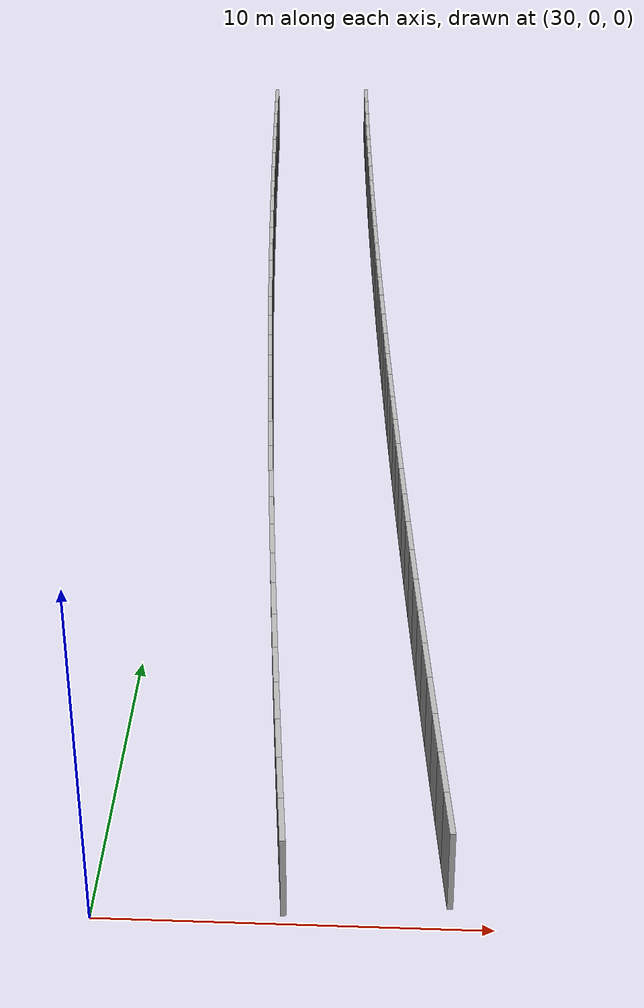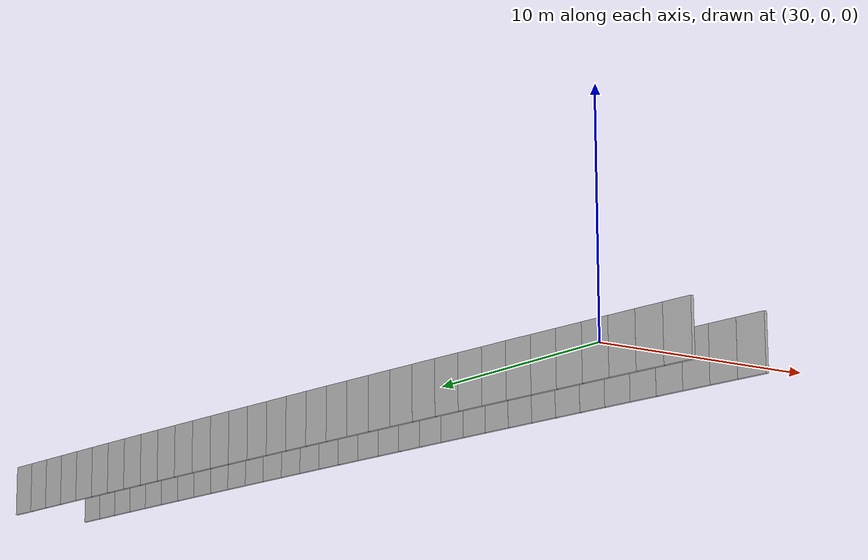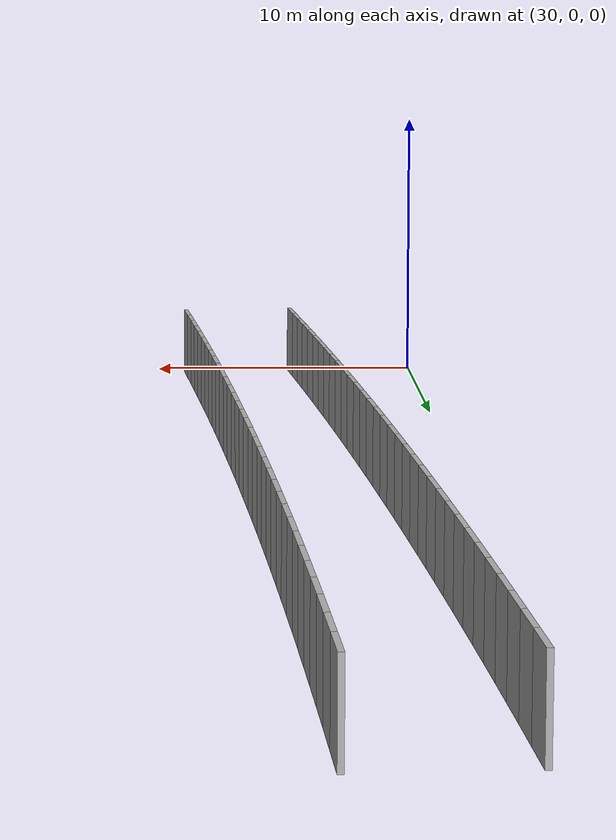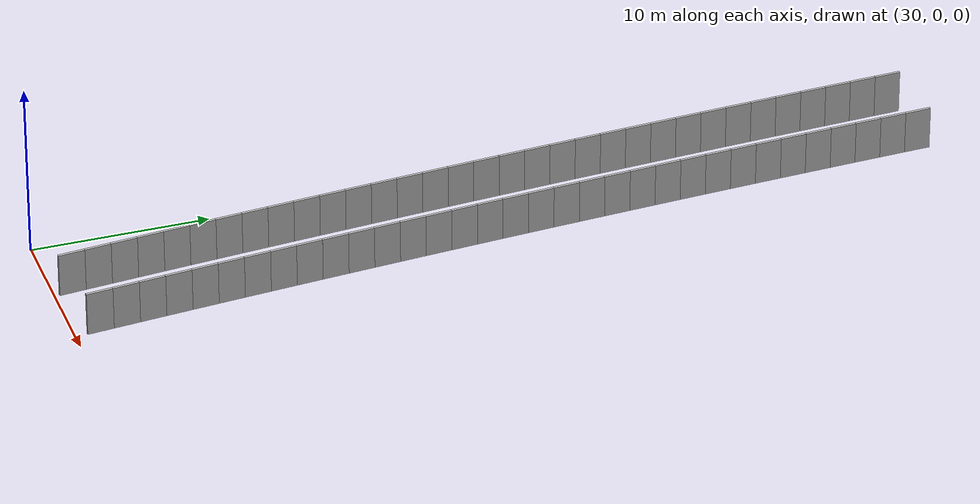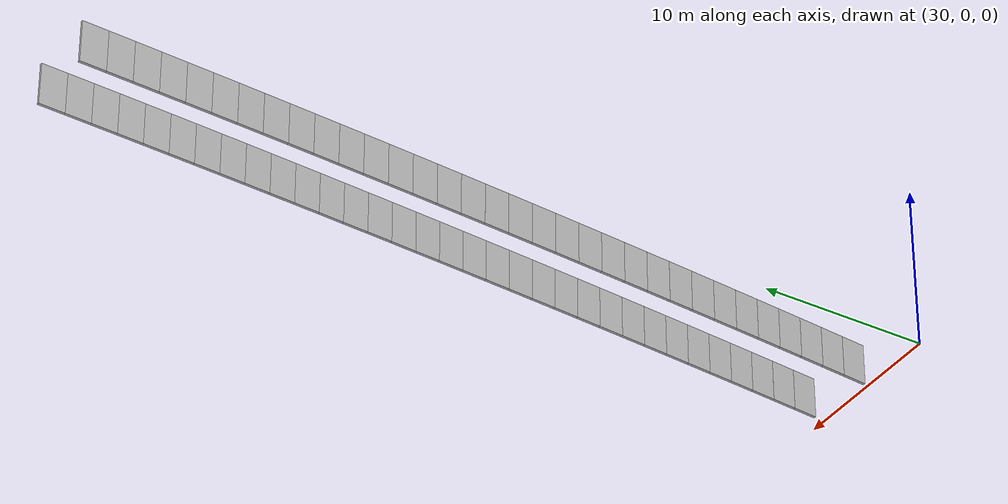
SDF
<?xml version="1.0" ?>
<sdf version="1.6">
  <model name="sps_0224">
    <pose frame="">0 0 0 0 -0 0</pose>
    <static>1</static>
    <self_collide>0</self_collide>
    <allow_auto_disable>0</allow_auto_disable>
    <link name="Wall5237">
      <kinematic>0</kinematic>
      <gravity>1</gravity>
      <self_collide>0</self_collide>
      <collision name="collision">
        <geometry>
          <box>
            <size>1.49659 0.15 2.5</size>
          </box>
        </geometry>
        <pose frame="">0 0 0 0 -0 0</pose>
      </collision>
      <visual name="visual">
        <geometry>
          <box>
            <size>1.49659 0.15 2.5</size>
          </box>
        </geometry>
        <pose frame="">0 0 0 0 -0 0</pose>
        <cast_shadows>1</cast_shadows>
        <transparency>0.0</transparency>
      </visual>
      <pose frame="">35.415 49.185 1.25 0 0 -1.52465</pose>
    </link>
    <link name="Wall5238">
      <kinematic>0</kinematic>
      <gravity>1</gravity>
      <self_collide>0</self_collide>
      <collision name="collision">
        <geometry>
          <box>
            <size>1.49651 0.15 2.5</size>
          </box>
        </geometry>
        <pose frame="">0 0 0 0 -0 0</pose>
      </collision>
      <visual name="visual">
        <geometry>
          <box>
            <size>1.49651 0.15 2.5</size>
          </box>
        </geometry>
        <pose frame="">0 0 0 0 -0 0</pose>
        <cast_shadows>1</cast_shadows>
        <transparency>0.0</transparency>
      </visual>
      <pose frame="">35.4852 47.6901 1.25 0 0 -1.5231</pose>
    </link>
    <link name="Wall5239">
      <kinematic>0</kinematic>
      <gravity>1</gravity>
      <self_collide>0</self_collide>
      <collision name="collision">
        <geometry>
          <box>
            <size>1.49644 0.15 2.5</size>
          </box>
        </geometry>
        <pose frame="">0 0 0 0 -0 0</pose>
      </collision>
      <visual name="visual">
        <geometry>
          <box>
            <size>1.49644 0.15 2.5</size>
          </box>
        </geometry>
        <pose frame="">0 0 0 0 -0 0</pose>
        <cast_shadows>1</cast_shadows>
        <transparency>0.0</transparency>
      </visual>
      <pose frame="">35.5576 46.1954 1.25 0 0 -1.52159</pose>
    </link>
    <link name="Wall5240">
      <kinematic>0</kinematic>
      <gravity>1</gravity>
      <self_collide>0</self_collide>
      <collision name="collision">
        <geometry>
          <box>
            <size>1.49669 0.15 2.5</size>
          </box>
        </geometry>
        <pose frame="">0 0 0 0 -0 0</pose>
      </collision>
      <visual name="visual">
        <geometry>
          <box>
            <size>1.49669 0.15 2.5</size>
          </box>
        </geometry>
        <pose frame="">0 0 0 0 -0 0</pose>
        <cast_shadows>1</cast_shadows>
        <transparency>0.0</transparency>
      </visual>
      <pose frame="">35.6326 44.7007 1.25 0 0 -1.51984</pose>
    </link>
    <link name="Wall5241">
      <kinematic>0</kinematic>
      <gravity>1</gravity>
      <self_collide>0</self_collide>
      <collision name="collision">
        <geometry>
          <box>
            <size>1.4965 0.15 2.5</size>
          </box>
        </geometry>
        <pose frame="">0 0 0 0 -0 0</pose>
      </collision>
      <visual name="visual">
        <geometry>
          <box>
            <size>1.4965 0.15 2.5</size>
          </box>
        </geometry>
        <pose frame="">0 0 0 0 -0 0</pose>
        <cast_shadows>1</cast_shadows>
        <transparency>0.0</transparency>
      </visual>
      <pose frame="">35.7099 43.2061 1.25 0 0 -1.5184</pose>
    </link>
    <link name="Wall5242">
      <kinematic>0</kinematic>
      <gravity>1</gravity>
      <self_collide>0</self_collide>
      <collision name="collision">
        <geometry>
          <box>
            <size>1.49657 0.15 2.5</size>
          </box>
        </geometry>
        <pose frame="">0 0 0 0 -0 0</pose>
      </collision>
      <visual name="visual">
        <geometry>
          <box>
            <size>1.49657 0.15 2.5</size>
          </box>
        </geometry>
        <pose frame="">0 0 0 0 -0 0</pose>
        <cast_shadows>1</cast_shadows>
        <transparency>0.0</transparency>
      </visual>
      <pose frame="">35.7895 41.7117 1.25 0 0 -1.51677</pose>
    </link>
    <link name="Wall5243">
      <kinematic>0</kinematic>
      <gravity>1</gravity>
      <self_collide>0</self_collide>
      <collision name="collision">
        <geometry>
          <box>
            <size>1.49633 0.15 2.5</size>
          </box>
        </geometry>
        <pose frame="">0 0 0 0 -0 0</pose>
      </collision>
      <visual name="visual">
        <geometry>
          <box>
            <size>1.49633 0.15 2.5</size>
          </box>
        </geometry>
        <pose frame="">0 0 0 0 -0 0</pose>
        <cast_shadows>1</cast_shadows>
        <transparency>0.0</transparency>
      </visual>
      <pose frame="">35.8715 40.2175 1.25 0 0 -1.51517</pose>
    </link>
    <link name="Wall5244">
      <kinematic>0</kinematic>
      <gravity>1</gravity>
      <self_collide>0</self_collide>
      <collision name="collision">
        <geometry>
          <box>
            <size>1.49664 0.15 2.5</size>
          </box>
        </geometry>
        <pose frame="">0 0 0 0 -0 0</pose>
      </collision>
      <visual name="visual">
        <geometry>
          <box>
            <size>1.49664 0.15 2.5</size>
          </box>
        </geometry>
        <pose frame="">0 0 0 0 -0 0</pose>
        <cast_shadows>1</cast_shadows>
        <transparency>0.0</transparency>
      </visual>
      <pose frame="">35.9557 38.7234 1.25 0 0 -1.51371</pose>
    </link>
    <link name="Wall5245">
      <kinematic>0</kinematic>
      <gravity>1</gravity>
      <self_collide>0</self_collide>
      <collision name="collision">
        <geometry>
          <box>
            <size>1.49655 0.15 2.5</size>
          </box>
        </geometry>
        <pose frame="">0 0 0 0 -0 0</pose>
      </collision>
      <visual name="visual">
        <geometry>
          <box>
            <size>1.49655 0.15 2.5</size>
          </box>
        </geometry>
        <pose frame="">0 0 0 0 -0 0</pose>
        <cast_shadows>1</cast_shadows>
        <transparency>0.0</transparency>
      </visual>
      <pose frame="">36.0424 37.2293 1.25 0 0 -1.51195</pose>
    </link>
    <link name="Wall5246">
      <kinematic>0</kinematic>
      <gravity>1</gravity>
      <self_collide>0</self_collide>
      <collision name="collision">
        <geometry>
          <box>
            <size>1.49656 0.15 2.5</size>
          </box>
        </geometry>
        <pose frame="">0 0 0 0 -0 0</pose>
      </collision>
      <visual name="visual">
        <geometry>
          <box>
            <size>1.49656 0.15 2.5</size>
          </box>
        </geometry>
        <pose frame="">0 0 0 0 -0 0</pose>
        <cast_shadows>1</cast_shadows>
        <transparency>0.0</transparency>
      </visual>
      <pose frame="">36.1316 35.7354 1.25 0 0 -1.51048</pose>
    </link>
    <link name="Wall5247">
      <kinematic>0</kinematic>
      <gravity>1</gravity>
      <self_collide>0</self_collide>
      <collision name="collision">
        <geometry>
          <box>
            <size>1.49647 0.15 2.5</size>
          </box>
        </geometry>
        <pose frame="">0 0 0 0 -0 0</pose>
      </collision>
      <visual name="visual">
        <geometry>
          <box>
            <size>1.49647 0.15 2.5</size>
          </box>
        </geometry>
        <pose frame="">0 0 0 0 -0 0</pose>
        <cast_shadows>1</cast_shadows>
        <transparency>0.0</transparency>
      </visual>
      <pose frame="">36.223 34.2417 1.25 0 0 -1.50876</pose>
    </link>
    <link name="Wall5248">
      <kinematic>0</kinematic>
      <gravity>1</gravity>
      <self_collide>0</self_collide>
      <collision name="collision">
        <geometry>
          <box>
            <size>1.49643 0.15 2.5</size>
          </box>
        </geometry>
        <pose frame="">0 0 0 0 -0 0</pose>
      </collision>
      <visual name="visual">
        <geometry>
          <box>
            <size>1.49643 0.15 2.5</size>
          </box>
        </geometry>
        <pose frame="">0 0 0 0 -0 0</pose>
        <cast_shadows>1</cast_shadows>
        <transparency>0.0</transparency>
      </visual>
      <pose frame="">36.3169 32.7482 1.25 0 0 -1.50725</pose>
    </link>
    <link name="Wall5249">
      <kinematic>0</kinematic>
      <gravity>1</gravity>
      <self_collide>0</self_collide>
      <collision name="collision">
        <geometry>
          <box>
            <size>1.49658 0.15 2.5</size>
          </box>
        </geometry>
        <pose frame="">0 0 0 0 -0 0</pose>
      </collision>
      <visual name="visual">
        <geometry>
          <box>
            <size>1.49658 0.15 2.5</size>
          </box>
        </geometry>
        <pose frame="">0 0 0 0 -0 0</pose>
        <cast_shadows>1</cast_shadows>
        <transparency>0.0</transparency>
      </visual>
      <pose frame="">36.4132 31.2548 1.25 0 0 -1.50566</pose>
    </link>
    <link name="Wall5250">
      <kinematic>0</kinematic>
      <gravity>1</gravity>
      <self_collide>0</self_collide>
      <collision name="collision">
        <geometry>
          <box>
            <size>1.4965 0.15 2.5</size>
          </box>
        </geometry>
        <pose frame="">0 0 0 0 -0 0</pose>
      </collision>
      <visual name="visual">
        <geometry>
          <box>
            <size>1.4965 0.15 2.5</size>
          </box>
        </geometry>
        <pose frame="">0 0 0 0 -0 0</pose>
        <cast_shadows>1</cast_shadows>
        <transparency>0.0</transparency>
      </visual>
      <pose frame="">36.5118 29.7615 1.25 0 0 -1.50406</pose>
    </link>
    <link name="Wall5251">
      <kinematic>0</kinematic>
      <gravity>1</gravity>
      <self_collide>0</self_collide>
      <collision name="collision">
        <geometry>
          <box>
            <size>1.49652 0.15 2.5</size>
          </box>
        </geometry>
        <pose frame="">0 0 0 0 -0 0</pose>
      </collision>
      <visual name="visual">
        <geometry>
          <box>
            <size>1.49652 0.15 2.5</size>
          </box>
        </geometry>
        <pose frame="">0 0 0 0 -0 0</pose>
        <cast_shadows>1</cast_shadows>
        <transparency>0.0</transparency>
      </visual>
      <pose frame="">36.6127 28.2684 1.25 0 0 -1.50259</pose>
    </link>
    <link name="Wall5252">
      <kinematic>0</kinematic>
      <gravity>1</gravity>
      <self_collide>0</self_collide>
      <collision name="collision">
        <geometry>
          <box>
            <size>1.49664 0.15 2.5</size>
          </box>
        </geometry>
        <pose frame="">0 0 0 0 -0 0</pose>
      </collision>
      <visual name="visual">
        <geometry>
          <box>
            <size>1.49664 0.15 2.5</size>
          </box>
        </geometry>
        <pose frame="">0 0 0 0 -0 0</pose>
        <cast_shadows>1</cast_shadows>
        <transparency>0.0</transparency>
      </visual>
      <pose frame="">36.716 26.7754 1.25 0 0 -1.50084</pose>
    </link>
    <link name="Wall5253">
      <kinematic>0</kinematic>
      <gravity>1</gravity>
      <self_collide>0</self_collide>
      <collision name="collision">
        <geometry>
          <box>
            <size>1.49643 0.15 2.5</size>
          </box>
        </geometry>
        <pose frame="">0 0 0 0 -0 0</pose>
      </collision>
      <visual name="visual">
        <geometry>
          <box>
            <size>1.49643 0.15 2.5</size>
          </box>
        </geometry>
        <pose frame="">0 0 0 0 -0 0</pose>
        <cast_shadows>1</cast_shadows>
        <transparency>0.0</transparency>
      </visual>
      <pose frame="">36.8217 25.2826 1.25 0 0 -1.49936</pose>
    </link>
    <link name="Wall5254">
      <kinematic>0</kinematic>
      <gravity>1</gravity>
      <self_collide>0</self_collide>
      <collision name="collision">
        <geometry>
          <box>
            <size>1.49654 0.15 2.5</size>
          </box>
        </geometry>
        <pose frame="">0 0 0 0 -0 0</pose>
      </collision>
      <visual name="visual">
        <geometry>
          <box>
            <size>1.49654 0.15 2.5</size>
          </box>
        </geometry>
        <pose frame="">0 0 0 0 -0 0</pose>
        <cast_shadows>1</cast_shadows>
        <transparency>0.0</transparency>
      </visual>
      <pose frame="">36.9297 23.79 1.25 0 0 -1.49777</pose>
    </link>
    <link name="Wall5255">
      <kinematic>0</kinematic>
      <gravity>1</gravity>
      <self_collide>0</self_collide>
      <collision name="collision">
        <geometry>
          <box>
            <size>1.49661 0.15 2.5</size>
          </box>
        </geometry>
        <pose frame="">0 0 0 0 -0 0</pose>
      </collision>
      <visual name="visual">
        <geometry>
          <box>
            <size>1.49661 0.15 2.5</size>
          </box>
        </geometry>
        <pose frame="">0 0 0 0 -0 0</pose>
        <cast_shadows>1</cast_shadows>
        <transparency>0.0</transparency>
      </visual>
      <pose frame="">37.0402 22.2975 1.25 0 0 -1.49605</pose>
    </link>
    <link name="Wall5256">
      <kinematic>0</kinematic>
      <gravity>1</gravity>
      <self_collide>0</self_collide>
      <collision name="collision">
        <geometry>
          <box>
            <size>1.49652 0.15 2.5</size>
          </box>
        </geometry>
        <pose frame="">0 0 0 0 -0 0</pose>
      </collision>
      <visual name="visual">
        <geometry>
          <box>
            <size>1.49652 0.15 2.5</size>
          </box>
        </geometry>
        <pose frame="">0 0 0 0 -0 0</pose>
        <cast_shadows>1</cast_shadows>
        <transparency>0.0</transparency>
      </visual>
      <pose frame="">37.1529 20.8052 1.25 0 0 -1.49466</pose>
    </link>
    <link name="Wall5257">
      <kinematic>0</kinematic>
      <gravity>1</gravity>
      <self_collide>0</self_collide>
      <collision name="collision">
        <geometry>
          <box>
            <size>1.49672 0.15 2.5</size>
          </box>
        </geometry>
        <pose frame="">0 0 0 0 -0 0</pose>
      </collision>
      <visual name="visual">
        <geometry>
          <box>
            <size>1.49672 0.15 2.5</size>
          </box>
        </geometry>
        <pose frame="">0 0 0 0 -0 0</pose>
        <cast_shadows>1</cast_shadows>
        <transparency>0.0</transparency>
      </visual>
      <pose frame="">37.2681 19.313 1.25 0 0 -1.49295</pose>
    </link>
    <link name="Wall5258">
      <kinematic>0</kinematic>
      <gravity>1</gravity>
      <self_collide>0</self_collide>
      <collision name="collision">
        <geometry>
          <box>
            <size>1.49653 0.15 2.5</size>
          </box>
        </geometry>
        <pose frame="">0 0 0 0 -0 0</pose>
      </collision>
      <visual name="visual">
        <geometry>
          <box>
            <size>1.49653 0.15 2.5</size>
          </box>
        </geometry>
        <pose frame="">0 0 0 0 -0 0</pose>
        <cast_shadows>1</cast_shadows>
        <transparency>0.0</transparency>
      </visual>
      <pose frame="">37.3856 17.821 1.25 0 0 -1.49147</pose>
    </link>
    <link name="Wall5259">
      <kinematic>0</kinematic>
      <gravity>1</gravity>
      <self_collide>0</self_collide>
      <collision name="collision">
        <geometry>
          <box>
            <size>1.49648 0.15 2.5</size>
          </box>
        </geometry>
        <pose frame="">0 0 0 0 -0 0</pose>
      </collision>
      <visual name="visual">
        <geometry>
          <box>
            <size>1.49648 0.15 2.5</size>
          </box>
        </geometry>
        <pose frame="">0 0 0 0 -0 0</pose>
        <cast_shadows>1</cast_shadows>
        <transparency>0.0</transparency>
      </visual>
      <pose frame="">37.5054 16.3293 1.25 0 0 -1.48983</pose>
    </link>
    <link name="Wall5260">
      <kinematic>0</kinematic>
      <gravity>1</gravity>
      <self_collide>0</self_collide>
      <collision name="collision">
        <geometry>
          <box>
            <size>1.49649 0.15 2.5</size>
          </box>
        </geometry>
        <pose frame="">0 0 0 0 -0 0</pose>
      </collision>
      <visual name="visual">
        <geometry>
          <box>
            <size>1.49649 0.15 2.5</size>
          </box>
        </geometry>
        <pose frame="">0 0 0 0 -0 0</pose>
        <cast_shadows>1</cast_shadows>
        <transparency>0.0</transparency>
      </visual>
      <pose frame="">37.6276 14.8378 1.25 0 0 -1.48827</pose>
    </link>
    <link name="Wall5261">
      <kinematic>0</kinematic>
      <gravity>1</gravity>
      <self_collide>0</self_collide>
      <collision name="collision">
        <geometry>
          <box>
            <size>1.49649 0.15 2.5</size>
          </box>
        </geometry>
        <pose frame="">0 0 0 0 -0 0</pose>
      </collision>
      <visual name="visual">
        <geometry>
          <box>
            <size>1.49649 0.15 2.5</size>
          </box>
        </geometry>
        <pose frame="">0 0 0 0 -0 0</pose>
        <cast_shadows>1</cast_shadows>
        <transparency>0.0</transparency>
      </visual>
      <pose frame="">37.752 13.3465 1.25 0 0 -1.48676</pose>
    </link>
    <link name="Wall5262">
      <kinematic>0</kinematic>
      <gravity>1</gravity>
      <self_collide>0</self_collide>
      <collision name="collision">
        <geometry>
          <box>
            <size>1.49653 0.15 2.5</size>
          </box>
        </geometry>
        <pose frame="">0 0 0 0 -0 0</pose>
      </collision>
      <visual name="visual">
        <geometry>
          <box>
            <size>1.49653 0.15 2.5</size>
          </box>
        </geometry>
        <pose frame="">0 0 0 0 -0 0</pose>
        <cast_shadows>1</cast_shadows>
        <transparency>0.0</transparency>
      </visual>
      <pose frame="">37.879 11.8554 1.25 0 0 -1.485</pose>
    </link>
    <link name="Wall5263">
      <kinematic>0</kinematic>
      <gravity>1</gravity>
      <self_collide>0</self_collide>
      <collision name="collision">
        <geometry>
          <box>
            <size>1.49629 0.15 2.5</size>
          </box>
        </geometry>
        <pose frame="">0 0 0 0 -0 0</pose>
      </collision>
      <visual name="visual">
        <geometry>
          <box>
            <size>1.49629 0.15 2.5</size>
          </box>
        </geometry>
        <pose frame="">0 0 0 0 -0 0</pose>
        <cast_shadows>1</cast_shadows>
        <transparency>0.0</transparency>
      </visual>
      <pose frame="">38.0083 10.3646 1.25 0 0 -1.48356</pose>
    </link>
    <link name="Wall5264">
      <kinematic>0</kinematic>
      <gravity>1</gravity>
      <self_collide>0</self_collide>
      <collision name="collision">
        <geometry>
          <box>
            <size>1.49652 0.15 2.5</size>
          </box>
        </geometry>
        <pose frame="">0 0 0 0 -0 0</pose>
      </collision>
      <visual name="visual">
        <geometry>
          <box>
            <size>1.49652 0.15 2.5</size>
          </box>
        </geometry>
        <pose frame="">0 0 0 0 -0 0</pose>
        <cast_shadows>1</cast_shadows>
        <transparency>0.0</transparency>
      </visual>
      <pose frame="">38.1399 8.87398 1.25 0 0 -1.48181</pose>
    </link>
    <link name="Wall5265">
      <kinematic>0</kinematic>
      <gravity>1</gravity>
      <self_collide>0</self_collide>
      <collision name="collision">
        <geometry>
          <box>
            <size>1.49672 0.15 2.5</size>
          </box>
        </geometry>
        <pose frame="">0 0 0 0 -0 0</pose>
      </collision>
      <visual name="visual">
        <geometry>
          <box>
            <size>1.49672 0.15 2.5</size>
          </box>
        </geometry>
        <pose frame="">0 0 0 0 -0 0</pose>
        <cast_shadows>1</cast_shadows>
        <transparency>0.0</transparency>
      </visual>
      <pose frame="">38.274 7.38338 1.25 0 0 -1.48035</pose>
    </link>
    <link name="Wall5266">
      <kinematic>0</kinematic>
      <gravity>1</gravity>
      <self_collide>0</self_collide>
      <collision name="collision">
        <geometry>
          <box>
            <size>1.49652 0.15 2.5</size>
          </box>
        </geometry>
        <pose frame="">0 0 0 0 -0 0</pose>
      </collision>
      <visual name="visual">
        <geometry>
          <box>
            <size>1.49652 0.15 2.5</size>
          </box>
        </geometry>
        <pose frame="">0 0 0 0 -0 0</pose>
        <cast_shadows>1</cast_shadows>
        <transparency>0.0</transparency>
      </visual>
      <pose frame="">38.4105 5.89299 1.25 0 0 -1.4787</pose>
    </link>
    <link name="Wall5267">
      <kinematic>0</kinematic>
      <gravity>1</gravity>
      <self_collide>0</self_collide>
      <collision name="collision">
        <geometry>
          <box>
            <size>1.49653 0.15 2.5</size>
          </box>
        </geometry>
        <pose frame="">0 0 0 0 -0 0</pose>
      </collision>
      <visual name="visual">
        <geometry>
          <box>
            <size>1.49653 0.15 2.5</size>
          </box>
        </geometry>
        <pose frame="">0 0 0 0 -0 0</pose>
        <cast_shadows>1</cast_shadows>
        <transparency>0.0</transparency>
      </visual>
      <pose frame="">38.5492 4.40291 1.25 0 0 -1.47726</pose>
    </link>
    <link name="Wall5268">
      <kinematic>0</kinematic>
      <gravity>1</gravity>
      <self_collide>0</self_collide>
      <collision name="collision">
        <geometry>
          <box>
            <size>1.4966 0.15 2.5</size>
          </box>
        </geometry>
        <pose frame="">0 0 0 0 -0 0</pose>
      </collision>
      <visual name="visual">
        <geometry>
          <box>
            <size>1.4966 0.15 2.5</size>
          </box>
        </geometry>
        <pose frame="">0 0 0 0 -0 0</pose>
        <cast_shadows>1</cast_shadows>
        <transparency>0.0</transparency>
      </visual>
      <pose frame="">38.6902 2.91301 1.25 0 0 -1.47551</pose>
    </link>
    <link name="Wall5269">
      <kinematic>0</kinematic>
      <gravity>1</gravity>
      <self_collide>0</self_collide>
      <collision name="collision">
        <geometry>
          <box>
            <size>1.49644 0.15 2.5</size>
          </box>
        </geometry>
        <pose frame="">0 0 0 0 -0 0</pose>
      </collision>
      <visual name="visual">
        <geometry>
          <box>
            <size>1.49644 0.15 2.5</size>
          </box>
        </geometry>
        <pose frame="">0 0 0 0 -0 0</pose>
        <cast_shadows>1</cast_shadows>
        <transparency>0.0</transparency>
      </visual>
      <pose frame="">38.8337 1.42338 1.25 0 0 -1.47402</pose>
    </link>
    <link name="Wall7033">
      <kinematic>0</kinematic>
      <gravity>1</gravity>
      <self_collide>0</self_collide>
      <collision name="collision">
        <geometry>
          <box>
            <size>1.50319 0.15 2.5</size>
          </box>
        </geometry>
        <pose frame="">0 0 0 0 -0 0</pose>
      </collision>
      <visual name="visual">
        <geometry>
          <box>
            <size>1.50319 0.15 2.5</size>
          </box>
        </geometry>
        <pose frame="">0 0 0 0 -0 0</pose>
        <cast_shadows>1</cast_shadows>
        <transparency>0.0</transparency>
      </visual>
      <pose frame="">31.28 48.9939 1.25 0 0 -1.52461</pose>
    </link>
    <link name="Wall7034">
      <kinematic>0</kinematic>
      <gravity>1</gravity>
      <self_collide>0</self_collide>
      <collision name="collision">
        <geometry>
          <box>
            <size>1.50311 0.15 2.5</size>
          </box>
        </geometry>
        <pose frame="">0 0 0 0 -0 0</pose>
      </collision>
      <visual name="visual">
        <geometry>
          <box>
            <size>1.50311 0.15 2.5</size>
          </box>
        </geometry>
        <pose frame="">0 0 0 0 -0 0</pose>
        <cast_shadows>1</cast_shadows>
        <transparency>0.0</transparency>
      </visual>
      <pose frame="">31.3505 47.4924 1.25 0 0 -1.52315</pose>
    </link>
    <link name="Wall7035">
      <kinematic>0</kinematic>
      <gravity>1</gravity>
      <self_collide>0</self_collide>
      <collision name="collision">
        <geometry>
          <box>
            <size>1.50304 0.15 2.5</size>
          </box>
        </geometry>
        <pose frame="">0 0 0 0 -0 0</pose>
      </collision>
      <visual name="visual">
        <geometry>
          <box>
            <size>1.50304 0.15 2.5</size>
          </box>
        </geometry>
        <pose frame="">0 0 0 0 -0 0</pose>
        <cast_shadows>1</cast_shadows>
        <transparency>0.0</transparency>
      </visual>
      <pose frame="">31.4232 45.9911 1.25 0 0 -1.52156</pose>
    </link>
    <link name="Wall7036">
      <kinematic>0</kinematic>
      <gravity>1</gravity>
      <self_collide>0</self_collide>
      <collision name="collision">
        <geometry>
          <box>
            <size>1.50292 0.15 2.5</size>
          </box>
        </geometry>
        <pose frame="">0 0 0 0 -0 0</pose>
      </collision>
      <visual name="visual">
        <geometry>
          <box>
            <size>1.50292 0.15 2.5</size>
          </box>
        </geometry>
        <pose frame="">0 0 0 0 -0 0</pose>
        <cast_shadows>1</cast_shadows>
        <transparency>0.0</transparency>
      </visual>
      <pose frame="">31.4984 44.49 1.25 0 0 -1.51993</pose>
    </link>
    <link name="Wall7037">
      <kinematic>0</kinematic>
      <gravity>1</gravity>
      <self_collide>0</self_collide>
      <collision name="collision">
        <geometry>
          <box>
            <size>1.5031 0.15 2.5</size>
          </box>
        </geometry>
        <pose frame="">0 0 0 0 -0 0</pose>
      </collision>
      <visual name="visual">
        <geometry>
          <box>
            <size>1.5031 0.15 2.5</size>
          </box>
        </geometry>
        <pose frame="">0 0 0 0 -0 0</pose>
        <cast_shadows>1</cast_shadows>
        <transparency>0.0</transparency>
      </visual>
      <pose frame="">31.576 42.989 1.25 0 0 -1.51835</pose>
    </link>
    <link name="Wall7038">
      <kinematic>0</kinematic>
      <gravity>1</gravity>
      <self_collide>0</self_collide>
      <collision name="collision">
        <geometry>
          <box>
            <size>1.50317 0.15 2.5</size>
          </box>
        </geometry>
        <pose frame="">0 0 0 0 -0 0</pose>
      </collision>
      <visual name="visual">
        <geometry>
          <box>
            <size>1.50317 0.15 2.5</size>
          </box>
        </geometry>
        <pose frame="">0 0 0 0 -0 0</pose>
        <cast_shadows>1</cast_shadows>
        <transparency>0.0</transparency>
      </visual>
      <pose frame="">31.6561 41.488 1.25 0 0 -1.51673</pose>
    </link>
    <link name="Wall7039">
      <kinematic>0</kinematic>
      <gravity>1</gravity>
      <self_collide>0</self_collide>
      <collision name="collision">
        <geometry>
          <box>
            <size>1.50293 0.15 2.5</size>
          </box>
        </geometry>
        <pose frame="">0 0 0 0 -0 0</pose>
      </collision>
      <visual name="visual">
        <geometry>
          <box>
            <size>1.50293 0.15 2.5</size>
          </box>
        </geometry>
        <pose frame="">0 0 0 0 -0 0</pose>
        <cast_shadows>1</cast_shadows>
        <transparency>0.0</transparency>
      </visual>
      <pose frame="">31.7385 39.9872 1.25 0 0 -1.51517</pose>
    </link>
    <link name="Wall7040">
      <kinematic>0</kinematic>
      <gravity>1</gravity>
      <self_collide>0</self_collide>
      <collision name="collision">
        <geometry>
          <box>
            <size>1.50326 0.15 2.5</size>
          </box>
        </geometry>
        <pose frame="">0 0 0 0 -0 0</pose>
      </collision>
      <visual name="visual">
        <geometry>
          <box>
            <size>1.50326 0.15 2.5</size>
          </box>
        </geometry>
        <pose frame="">0 0 0 0 -0 0</pose>
        <cast_shadows>1</cast_shadows>
        <transparency>0.0</transparency>
      </visual>
      <pose frame="">31.8232 38.4865 1.25 0 0 -1.51356</pose>
    </link>
    <link name="Wall7041">
      <kinematic>0</kinematic>
      <gravity>1</gravity>
      <self_collide>0</self_collide>
      <collision name="collision">
        <geometry>
          <box>
            <size>1.50302 0.15 2.5</size>
          </box>
        </geometry>
        <pose frame="">0 0 0 0 -0 0</pose>
      </collision>
      <visual name="visual">
        <geometry>
          <box>
            <size>1.50302 0.15 2.5</size>
          </box>
        </geometry>
        <pose frame="">0 0 0 0 -0 0</pose>
        <cast_shadows>1</cast_shadows>
        <transparency>0.0</transparency>
      </visual>
      <pose frame="">31.9103 36.9859 1.25 0 0 -1.51208</pose>
    </link>
    <link name="Wall7042">
      <kinematic>0</kinematic>
      <gravity>1</gravity>
      <self_collide>0</self_collide>
      <collision name="collision">
        <geometry>
          <box>
            <size>1.50311 0.15 2.5</size>
          </box>
        </geometry>
        <pose frame="">0 0 0 0 -0 0</pose>
      </collision>
      <visual name="visual">
        <geometry>
          <box>
            <size>1.50311 0.15 2.5</size>
          </box>
        </geometry>
        <pose frame="">0 0 0 0 -0 0</pose>
        <cast_shadows>1</cast_shadows>
        <transparency>0.0</transparency>
      </visual>
      <pose frame="">31.9998 35.4855 1.25 0 0 -1.51034</pose>
    </link>
    <link name="Wall7043">
      <kinematic>0</kinematic>
      <gravity>1</gravity>
      <self_collide>0</self_collide>
      <collision name="collision">
        <geometry>
          <box>
            <size>1.50306 0.15 2.5</size>
          </box>
        </geometry>
        <pose frame="">0 0 0 0 -0 0</pose>
      </collision>
      <visual name="visual">
        <geometry>
          <box>
            <size>1.50306 0.15 2.5</size>
          </box>
        </geometry>
        <pose frame="">0 0 0 0 -0 0</pose>
        <cast_shadows>1</cast_shadows>
        <transparency>0.0</transparency>
      </visual>
      <pose frame="">32.0918 33.9852 1.25 0 0 -1.50887</pose>
    </link>
    <link name="Wall7044">
      <kinematic>0</kinematic>
      <gravity>1</gravity>
      <self_collide>0</self_collide>
      <collision name="collision">
        <geometry>
          <box>
            <size>1.50303 0.15 2.5</size>
          </box>
        </geometry>
        <pose frame="">0 0 0 0 -0 0</pose>
      </collision>
      <visual name="visual">
        <geometry>
          <box>
            <size>1.50303 0.15 2.5</size>
          </box>
        </geometry>
        <pose frame="">0 0 0 0 -0 0</pose>
        <cast_shadows>1</cast_shadows>
        <transparency>0.0</transparency>
      </visual>
      <pose frame="">32.186 32.4851 1.25 0 0 -1.50728</pose>
    </link>
    <link name="Wall7045">
      <kinematic>0</kinematic>
      <gravity>1</gravity>
      <self_collide>0</self_collide>
      <collision name="collision">
        <geometry>
          <box>
            <size>1.50318 0.15 2.5</size>
          </box>
        </geometry>
        <pose frame="">0 0 0 0 -0 0</pose>
      </collision>
      <visual name="visual">
        <geometry>
          <box>
            <size>1.50318 0.15 2.5</size>
          </box>
        </geometry>
        <pose frame="">0 0 0 0 -0 0</pose>
        <cast_shadows>1</cast_shadows>
        <transparency>0.0</transparency>
      </visual>
      <pose frame="">32.2826 30.9851 1.25 0 0 -1.5057</pose>
    </link>
    <link name="Wall7046">
      <kinematic>0</kinematic>
      <gravity>1</gravity>
      <self_collide>0</self_collide>
      <collision name="collision">
        <geometry>
          <box>
            <size>1.50298 0.15 2.5</size>
          </box>
        </geometry>
        <pose frame="">0 0 0 0 -0 0</pose>
      </collision>
      <visual name="visual">
        <geometry>
          <box>
            <size>1.50298 0.15 2.5</size>
          </box>
        </geometry>
        <pose frame="">0 0 0 0 -0 0</pose>
        <cast_shadows>1</cast_shadows>
        <transparency>0.0</transparency>
      </visual>
      <pose frame="">32.3816 29.4853 1.25 0 0 -1.50407</pose>
    </link>
    <link name="Wall7047">
      <kinematic>0</kinematic>
      <gravity>1</gravity>
      <self_collide>0</self_collide>
      <collision name="collision">
        <geometry>
          <box>
            <size>1.50308 0.15 2.5</size>
          </box>
        </geometry>
        <pose frame="">0 0 0 0 -0 0</pose>
      </collision>
      <visual name="visual">
        <geometry>
          <box>
            <size>1.50308 0.15 2.5</size>
          </box>
        </geometry>
        <pose frame="">0 0 0 0 -0 0</pose>
        <cast_shadows>1</cast_shadows>
        <transparency>0.0</transparency>
      </visual>
      <pose frame="">32.483 27.9857 1.25 0 0 -1.50248</pose>
    </link>
    <link name="Wall7048">
      <kinematic>0</kinematic>
      <gravity>1</gravity>
      <self_collide>0</self_collide>
      <collision name="collision">
        <geometry>
          <box>
            <size>1.5033 0.15 2.5</size>
          </box>
        </geometry>
        <pose frame="">0 0 0 0 -0 0</pose>
      </collision>
      <visual name="visual">
        <geometry>
          <box>
            <size>1.5033 0.15 2.5</size>
          </box>
        </geometry>
        <pose frame="">0 0 0 0 -0 0</pose>
        <cast_shadows>1</cast_shadows>
        <transparency>0.0</transparency>
      </visual>
      <pose frame="">32.5868 26.4861 1.25 0 0 -1.50091</pose>
    </link>
    <link name="Wall7049">
      <kinematic>0</kinematic>
      <gravity>1</gravity>
      <self_collide>0</self_collide>
      <collision name="collision">
        <geometry>
          <box>
            <size>1.50304 0.15 2.5</size>
          </box>
        </geometry>
        <pose frame="">0 0 0 0 -0 0</pose>
      </collision>
      <visual name="visual">
        <geometry>
          <box>
            <size>1.50304 0.15 2.5</size>
          </box>
        </geometry>
        <pose frame="">0 0 0 0 -0 0</pose>
        <cast_shadows>1</cast_shadows>
        <transparency>0.0</transparency>
      </visual>
      <pose frame="">32.6929 24.9867 1.25 0 0 -1.49939</pose>
    </link>
    <link name="Wall7050">
      <kinematic>0</kinematic>
      <gravity>1</gravity>
      <self_collide>0</self_collide>
      <collision name="collision">
        <geometry>
          <box>
            <size>1.50322 0.15 2.5</size>
          </box>
        </geometry>
        <pose frame="">0 0 0 0 -0 0</pose>
      </collision>
      <visual name="visual">
        <geometry>
          <box>
            <size>1.50322 0.15 2.5</size>
          </box>
        </geometry>
        <pose frame="">0 0 0 0 -0 0</pose>
        <cast_shadows>1</cast_shadows>
        <transparency>0.0</transparency>
      </visual>
      <pose frame="">32.8014 23.4875 1.25 0 0 -1.49769</pose>
    </link>
    <link name="Wall7051">
      <kinematic>0</kinematic>
      <gravity>1</gravity>
      <self_collide>0</self_collide>
      <collision name="collision">
        <geometry>
          <box>
            <size>1.50297 0.15 2.5</size>
          </box>
        </geometry>
        <pose frame="">0 0 0 0 -0 0</pose>
      </collision>
      <visual name="visual">
        <geometry>
          <box>
            <size>1.50297 0.15 2.5</size>
          </box>
        </geometry>
        <pose frame="">0 0 0 0 -0 0</pose>
        <cast_shadows>1</cast_shadows>
        <transparency>0.0</transparency>
      </visual>
      <pose frame="">32.9124 21.9885 1.25 0 0 -1.49609</pose>
    </link>
    <link name="Wall7052">
      <kinematic>0</kinematic>
      <gravity>1</gravity>
      <self_collide>0</self_collide>
      <collision name="collision">
        <geometry>
          <box>
            <size>1.50295 0.15 2.5</size>
          </box>
        </geometry>
        <pose frame="">0 0 0 0 -0 0</pose>
      </collision>
      <visual name="visual">
        <geometry>
          <box>
            <size>1.50295 0.15 2.5</size>
          </box>
        </geometry>
        <pose frame="">0 0 0 0 -0 0</pose>
        <cast_shadows>1</cast_shadows>
        <transparency>0.0</transparency>
      </visual>
      <pose frame="">33.0257 20.4898 1.25 0 0 -1.49462</pose>
    </link>
    <link name="Wall7053">
      <kinematic>0</kinematic>
      <gravity>1</gravity>
      <self_collide>0</self_collide>
      <collision name="collision">
        <geometry>
          <box>
            <size>1.50314 0.15 2.5</size>
          </box>
        </geometry>
        <pose frame="">0 0 0 0 -0 0</pose>
      </collision>
      <visual name="visual">
        <geometry>
          <box>
            <size>1.50314 0.15 2.5</size>
          </box>
        </geometry>
        <pose frame="">0 0 0 0 -0 0</pose>
        <cast_shadows>1</cast_shadows>
        <transparency>0.0</transparency>
      </visual>
      <pose frame="">33.1413 18.9912 1.25 0 0 -1.493</pose>
    </link>
    <link name="Wall7054">
      <kinematic>0</kinematic>
      <gravity>1</gravity>
      <self_collide>0</self_collide>
      <collision name="collision">
        <geometry>
          <box>
            <size>1.50296 0.15 2.5</size>
          </box>
        </geometry>
        <pose frame="">0 0 0 0 -0 0</pose>
      </collision>
      <visual name="visual">
        <geometry>
          <box>
            <size>1.50296 0.15 2.5</size>
          </box>
        </geometry>
        <pose frame="">0 0 0 0 -0 0</pose>
        <cast_shadows>1</cast_shadows>
        <transparency>0.0</transparency>
      </visual>
      <pose frame="">33.2593 17.4928 1.25 0 0 -1.4914</pose>
    </link>
    <link name="Wall7055">
      <kinematic>0</kinematic>
      <gravity>1</gravity>
      <self_collide>0</self_collide>
      <collision name="collision">
        <geometry>
          <box>
            <size>1.50308 0.15 2.5</size>
          </box>
        </geometry>
        <pose frame="">0 0 0 0 -0 0</pose>
      </collision>
      <visual name="visual">
        <geometry>
          <box>
            <size>1.50308 0.15 2.5</size>
          </box>
        </geometry>
        <pose frame="">0 0 0 0 -0 0</pose>
        <cast_shadows>1</cast_shadows>
        <transparency>0.0</transparency>
      </visual>
      <pose frame="">33.3796 15.9946 1.25 0 0 -1.48994</pose>
    </link>
    <link name="Wall7056">
      <kinematic>0</kinematic>
      <gravity>1</gravity>
      <self_collide>0</self_collide>
      <collision name="collision">
        <geometry>
          <box>
            <size>1.50311 0.15 2.5</size>
          </box>
        </geometry>
        <pose frame="">0 0 0 0 -0 0</pose>
      </collision>
      <visual name="visual">
        <geometry>
          <box>
            <size>1.50311 0.15 2.5</size>
          </box>
        </geometry>
        <pose frame="">0 0 0 0 -0 0</pose>
        <cast_shadows>1</cast_shadows>
        <transparency>0.0</transparency>
      </visual>
      <pose frame="">33.5023 14.4965 1.25 0 0 -1.48823</pose>
    </link>
    <link name="Wall7057">
      <kinematic>0</kinematic>
      <gravity>1</gravity>
      <self_collide>0</self_collide>
      <collision name="collision">
        <geometry>
          <box>
            <size>1.50313 0.15 2.5</size>
          </box>
        </geometry>
        <pose frame="">0 0 0 0 -0 0</pose>
      </collision>
      <visual name="visual">
        <geometry>
          <box>
            <size>1.50313 0.15 2.5</size>
          </box>
        </geometry>
        <pose frame="">0 0 0 0 -0 0</pose>
        <cast_shadows>1</cast_shadows>
        <transparency>0.0</transparency>
      </visual>
      <pose frame="">33.6274 12.9986 1.25 0 0 -1.4866</pose>
    </link>
    <link name="Wall7058">
      <kinematic>0</kinematic>
      <gravity>1</gravity>
      <self_collide>0</self_collide>
      <collision name="collision">
        <geometry>
          <box>
            <size>1.50313 0.15 2.5</size>
          </box>
        </geometry>
        <pose frame="">0 0 0 0 -0 0</pose>
      </collision>
      <visual name="visual">
        <geometry>
          <box>
            <size>1.50313 0.15 2.5</size>
          </box>
        </geometry>
        <pose frame="">0 0 0 0 -0 0</pose>
        <cast_shadows>1</cast_shadows>
        <transparency>0.0</transparency>
      </visual>
      <pose frame="">33.7549 11.5009 1.25 0 0 -1.48514</pose>
    </link>
    <link name="Wall7059">
      <kinematic>0</kinematic>
      <gravity>1</gravity>
      <self_collide>0</self_collide>
      <collision name="collision">
        <geometry>
          <box>
            <size>1.5031 0.15 2.5</size>
          </box>
        </geometry>
        <pose frame="">0 0 0 0 -0 0</pose>
      </collision>
      <visual name="visual">
        <geometry>
          <box>
            <size>1.5031 0.15 2.5</size>
          </box>
        </geometry>
        <pose frame="">0 0 0 0 -0 0</pose>
        <cast_shadows>1</cast_shadows>
        <transparency>0.0</transparency>
      </visual>
      <pose frame="">33.8848 10.0034 1.25 0 0 -1.4835</pose>
    </link>
    <link name="Wall7060">
      <kinematic>0</kinematic>
      <gravity>1</gravity>
      <self_collide>0</self_collide>
      <collision name="collision">
        <geometry>
          <box>
            <size>1.50312 0.15 2.5</size>
          </box>
        </geometry>
        <pose frame="">0 0 0 0 -0 0</pose>
      </collision>
      <visual name="visual">
        <geometry>
          <box>
            <size>1.50312 0.15 2.5</size>
          </box>
        </geometry>
        <pose frame="">0 0 0 0 -0 0</pose>
        <cast_shadows>1</cast_shadows>
        <transparency>0.0</transparency>
      </visual>
      <pose frame="">34.017 8.50612 1.25 0 0 -1.48196</pose>
    </link>
    <link name="Wall7061">
      <kinematic>0</kinematic>
      <gravity>1</gravity>
      <self_collide>0</self_collide>
      <collision name="collision">
        <geometry>
          <box>
            <size>1.50316 0.15 2.5</size>
          </box>
        </geometry>
        <pose frame="">0 0 0 0 -0 0</pose>
      </collision>
      <visual name="visual">
        <geometry>
          <box>
            <size>1.50316 0.15 2.5</size>
          </box>
        </geometry>
        <pose frame="">0 0 0 0 -0 0</pose>
        <cast_shadows>1</cast_shadows>
        <transparency>0.0</transparency>
      </visual>
      <pose frame="">34.1515 7.00902 1.25 0 0 -1.48033</pose>
    </link>
    <link name="Wall7062">
      <kinematic>0</kinematic>
      <gravity>1</gravity>
      <self_collide>0</self_collide>
      <collision name="collision">
        <geometry>
          <box>
            <size>1.50301 0.15 2.5</size>
          </box>
        </geometry>
        <pose frame="">0 0 0 0 -0 0</pose>
      </collision>
      <visual name="visual">
        <geometry>
          <box>
            <size>1.50301 0.15 2.5</size>
          </box>
        </geometry>
        <pose frame="">0 0 0 0 -0 0</pose>
        <cast_shadows>1</cast_shadows>
        <transparency>0.0</transparency>
      </visual>
      <pose frame="">34.2885 5.51219 1.25 0 0 -1.47873</pose>
    </link>
    <link name="Wall7063">
      <kinematic>0</kinematic>
      <gravity>1</gravity>
      <self_collide>0</self_collide>
      <collision name="collision">
        <geometry>
          <box>
            <size>1.50299 0.15 2.5</size>
          </box>
        </geometry>
        <pose frame="">0 0 0 0 -0 0</pose>
      </collision>
      <visual name="visual">
        <geometry>
          <box>
            <size>1.50299 0.15 2.5</size>
          </box>
        </geometry>
        <pose frame="">0 0 0 0 -0 0</pose>
        <cast_shadows>1</cast_shadows>
        <transparency>0.0</transparency>
      </visual>
      <pose frame="">34.4279 4.01567 1.25 0 0 -1.4771</pose>
    </link>
    <link name="Wall7064">
      <kinematic>0</kinematic>
      <gravity>1</gravity>
      <self_collide>0</self_collide>
      <collision name="collision">
        <geometry>
          <box>
            <size>1.50322 0.15 2.5</size>
          </box>
        </geometry>
        <pose frame="">0 0 0 0 -0 0</pose>
      </collision>
      <visual name="visual">
        <geometry>
          <box>
            <size>1.50322 0.15 2.5</size>
          </box>
        </geometry>
        <pose frame="">0 0 0 0 -0 0</pose>
        <cast_shadows>1</cast_shadows>
        <transparency>0.0</transparency>
      </visual>
      <pose frame="">34.5698 2.51927 1.25 0 0 -1.47552</pose>
    </link>
    <link name="Wall7065">
      <kinematic>0</kinematic>
      <gravity>1</gravity>
      <self_collide>0</self_collide>
      <collision name="collision">
        <geometry>
          <box>
            <size>1.503 0.15 2.5</size>
          </box>
        </geometry>
        <pose frame="">0 0 0 0 -0 0</pose>
      </collision>
      <visual name="visual">
        <geometry>
          <box>
            <size>1.503 0.15 2.5</size>
          </box>
        </geometry>
        <pose frame="">0 0 0 0 -0 0</pose>
        <cast_shadows>1</cast_shadows>
        <transparency>0.0</transparency>
      </visual>
      <pose frame="">34.7139 1.02309 1.25 0 0 -1.47404</pose>
    </link>
  </model>
</sdf>
